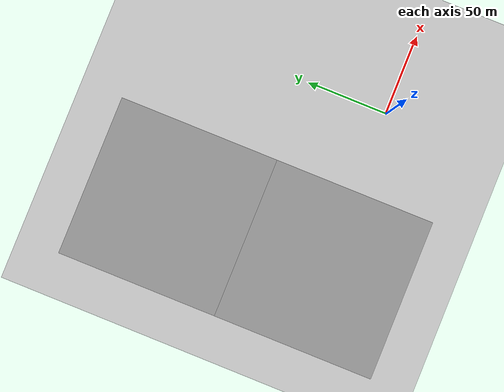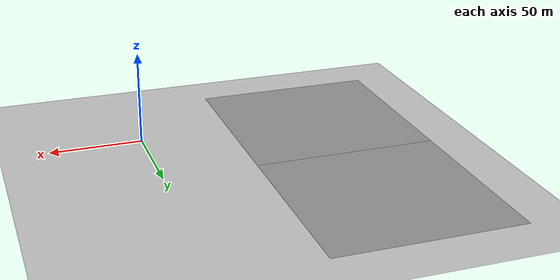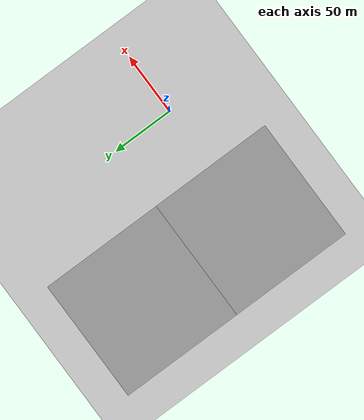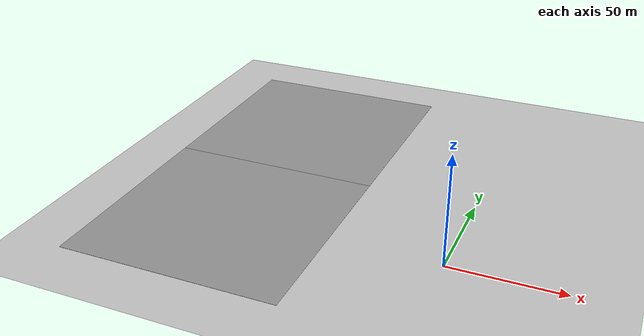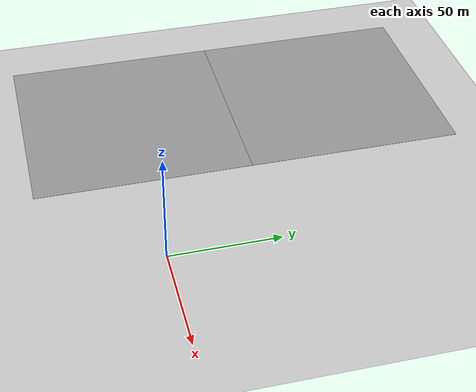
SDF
<sdf version="1.6">
 <world name="default">
  <model name="ground_plane">
   <static>1</static>
   <link name="link">
    <collision name="collision">
     <geometry><plane><normal>0 0 1</normal><size>100 100</size></plane></geometry>
     <surface>
      <contact><collide_bitmask>65535</collide_bitmask></contact>
      <friction><ode><mu>100</mu><mu2>50</mu2></ode></friction>
     </surface>
    </collision>
    <visual name="visual">
     <cast_shadows>0</cast_shadows>
     <geometry><plane><normal>0 0 1</normal><size>100 100</size></plane></geometry>
     <material>
      <script><uri>file://media/materials/scripts/gazebo.material</uri><name>Gazebo/Grey</name></script>
     </material>
    </visual>
   </link>
  </model>
  <model name="ground_plane_3">
   <static>1</static>
   <link name="link">
    <collision name="collision">
     <geometry><plane><normal>0 0 1</normal><size>100 100</size></plane></geometry>
     <surface>
      <contact><collide_bitmask>65535</collide_bitmask></contact>
      <friction><ode><mu>100</mu><mu2>50</mu2></ode></friction>
     </surface>
    </collision>
    <visual name="visual">
     <cast_shadows>0</cast_shadows>
     <geometry><plane><normal>0 0 1</normal><size>100 100</size></plane></geometry>
     <material>
      <script><uri>file://media/materials/scripts/gazebo.material</uri><name>Gazebo/Grey</name></script>
     </material>
    </visual>
   </link>
   <pose>-100 0 0 0 -0 0</pose>
  </model>
  <model name="ground_plane_5">
   <static>1</static>
   <link name="link">
    <collision name="collision">
     <geometry><plane><normal>0 0 1</normal><size>100 100</size></plane></geometry>
     <surface>
      <contact><collide_bitmask>65535</collide_bitmask></contact>
      <friction><ode><mu>100</mu><mu2>50</mu2></ode></friction>
     </surface>
    </collision>
    <visual name="visual">
     <cast_shadows>0</cast_shadows>
     <geometry><plane><normal>0 0 1</normal><size>100 100</size></plane></geometry>
     <material>
      <script><uri>file://media/materials/scripts/gazebo.material</uri><name>Gazebo/Grey</name></script>
     </material>
    </visual>
   </link>
   <pose>-100 100 0 0 -0 0</pose>
  </model>
 </world>
</sdf>
